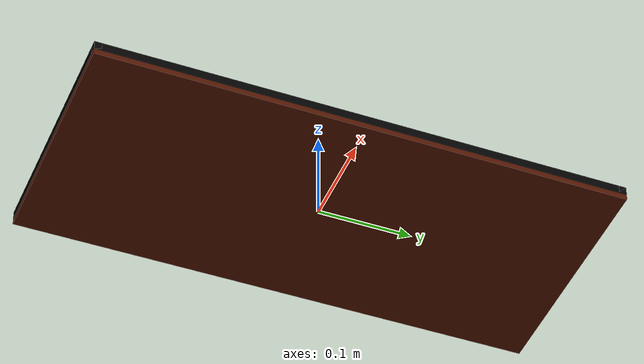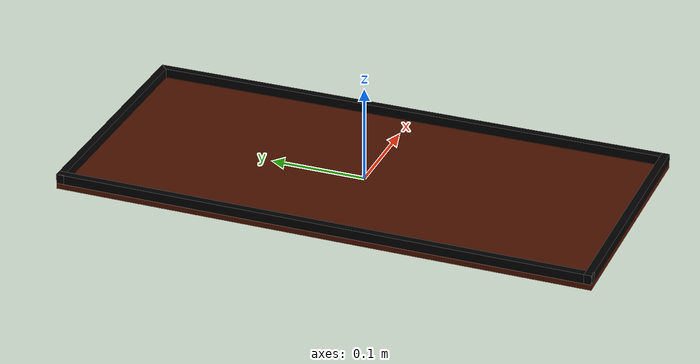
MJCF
<mujoco>
    <asset>
        <texture name="wood_tex" type="2d" builtin="flat" rgb1="0.55 0.27 0.07" rgb2="0.55 0.27 0.07" width="64" height="64"/>
        <material name="wood_mat" texture="wood_tex" specular="0.2" shininess="0.1" rgba="0.55 0.27 0.07 1.0"/>
        <material name="wood_mat_black" texture="wood_tex" specular="0.2" shininess="0.1" rgba="0 0 0 1.0"/>
    </asset>
    <worldbody>
        <body name="body_tray_1">
            <geom type="box" size="0.13 0.28 0.003" pos="0 0 0.003" material="wood_mat"/>
            <geom type="box" size="0.004 0.28 0.005" pos="0.126 0 0.011" material="wood_mat_black"/>
            <geom type="box" size="0.004 0.28 0.005" pos="-0.126 0 0.011" material="wood_mat_black"/>
            <geom type="box" size="0.13 0.004 0.005" pos="0 0.276 0.011" material="wood_mat_black"/>
            <geom type="box" size="0.13 0.004 0.005" pos="0 -0.276 0.011" material="wood_mat_black"/>
        </body>
    </worldbody>
</mujoco>
